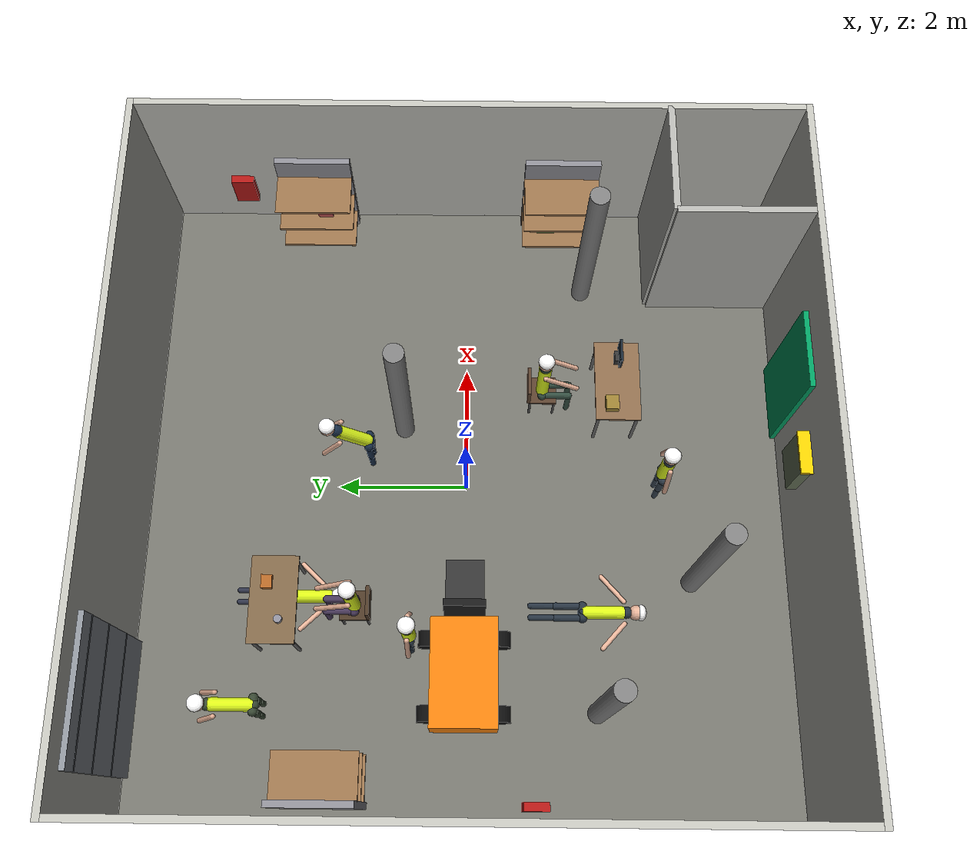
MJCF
<mujoco model="ppe_dataset_world">

    <compiler angle="radian"/>
    <option timestep="0.005"/>

    <worldbody>

        <camera
            name="dataset_camera"
            pos="0 -8 2.5"
            quat="0.5 0.5 -0.5 -0.5"
            fovy="58"/>

        <geom name="floor" type="plane" size="5 5 0.1" rgba="0.45 0.45 0.42 1" friction="1.0 0.005 0.0001"/>
        <light directional="true" diffuse=".8 .8 .8" specular=".3 .3 .3" pos="0 0 5" dir="0 0 -1"/>
        <!-- 보조 조명 -->
        <light directional="false" diffuse=".4 .4 .4" specular=".1 .1 .1" pos="3 3 3.5" dir="-0.3 -0.3 -1"/>
        <light directional="false" diffuse=".4 .4 .4" specular=".1 .1 .1" pos="-3 -3 3.5" dir="0.3 0.3 -1"/>

        <!-- 벽면 -->
        <geom name="wall_north" type="box" size="5.1 0.05 1.5" pos="0 5.05 1.5" rgba="0.75 0.75 0.72 1"/>
        <geom name="wall_south" type="box" size="5.1 0.05 1.5" pos="0 -5.05 1.5" rgba="0.75 0.75 0.72 1"/>
        <geom name="wall_east" type="box" size="0.05 5.0 1.5" pos="5.05 0 1.5" rgba="0.75 0.75 0.72 1"/>
        <geom name="wall_west" type="box" size="0.05 5.0 1.5" pos="-5.05 0 1.5" rgba="0.75 0.75 0.72 1"/>

        <!-- 기둥 -->
        <body name="column_1" pos="-1.5 -3.5 0">
            <geom name="column_1_geom" type="cylinder" size="0.15 1.5" pos="0 0 1.5" rgba="0.5 0.5 0.5 1" mass="80.0"/>
        </body>
        <body name="column_2" pos="1 1 0">
            <geom name="column_2_geom" type="cylinder" size="0.15 1.5" pos="0 0 1.5" rgba="0.5 0.5 0.5 1" mass="80.0"/>
        </body>
        <body name="column_3" pos="3.5 -1.9 0">
            <geom name="column_3_geom" type="cylinder" size="0.15 1.5" pos="0 0 1.5" rgba="0.5 0.5 0.5 1" mass="80.0"/>
        </body>
        <body name="column_4" pos="-3.5 -2 0">
            <geom name="column_4_geom" type="cylinder" size="0.15 1.5" pos="0 0 1.5" rgba="0.5 0.5 0.5 1" mass="80.0"/>
        </body>

        <!-- 서쪽 벽면 선반 -->
        <body name="wall_shelf_west" pos="-4.85 2.0 0">
            <geom name="shelf_west_back" type="box" size="0.05 0.6 0.9" pos="0 0 0.9" rgba="0.55 0.55 0.58 1" mass="8.0"/>
            <geom name="shelf_west_tier1" type="box" size="0.35 0.6 0.02" pos="0.35 0 0.4" rgba="0.6 0.45 0.3 1" mass="5.0"/>
            <geom name="shelf_west_tier2" type="box" size="0.35 0.6 0.02" pos="0.35 0 0.9" rgba="0.6 0.45 0.3 1" mass="5.0"/>
            <geom name="shelf_west_tier3" type="box" size="0.35 0.6 0.02" pos="0.35 0 1.4" rgba="0.6 0.45 0.3 1" mass="5.0"/>
            <geom name="shelf_west_item1" type="box" size="0.15 0.15 0.12" pos="0.3 -0.2 0.54" rgba="0.7 0.5 0.2 1" mass="3.0"/>
            <geom name="shelf_west_item2" type="box" size="0.12 0.12 0.1" pos="0.35 0.15 1.02" rgba="0.3 0.3 0.7 1" mass="2.0"/>
        </body>

        <!-- 동쪽 벽면 선반 1 -->
        <body name="wall_shelf_east_1" pos="4.85 -1.5 0">
            <geom name="shelf_east1_back" type="box" size="0.05 0.6 0.9" pos="0 0 0.9" rgba="0.55 0.55 0.58 1" mass="8.0"/>
            <geom name="shelf_east1_tier1" type="box" size="0.35 0.6 0.02" pos="-0.35 0 0.4" rgba="0.6 0.45 0.3 1" mass="5.0"/>
            <geom name="shelf_east1_tier2" type="box" size="0.35 0.6 0.02" pos="-0.35 0 0.9" rgba="0.6 0.45 0.3 1" mass="5.0"/>
            <geom name="shelf_east1_tier3" type="box" size="0.35 0.6 0.02" pos="-0.35 0 1.4" rgba="0.6 0.45 0.3 1" mass="5.0"/>
            <geom name="shelf_east1_item1" type="box" size="0.15 0.15 0.12" pos="-0.3 0.2 0.54" rgba="0.4 0.6 0.3 1" mass="3.0"/>
        </body>

        <!-- 동쪽 벽면 선반 2 -->
        <body name="wall_shelf_east_2" pos="4.85 2.5 0">
            <geom name="shelf_east2_back" type="box" size="0.05 0.6 0.9" pos="0 0 0.9" rgba="0.55 0.55 0.58 1" mass="8.0"/>
            <geom name="shelf_east2_tier1" type="box" size="0.35 0.6 0.02" pos="-0.35 0 0.4" rgba="0.6 0.45 0.3 1" mass="5.0"/>
            <geom name="shelf_east2_tier2" type="box" size="0.35 0.6 0.02" pos="-0.35 0 0.9" rgba="0.6 0.45 0.3 1" mass="5.0"/>
            <geom name="shelf_east2_tier3" type="box" size="0.35 0.6 0.02" pos="-0.35 0 1.4" rgba="0.6 0.45 0.3 1" mass="5.0"/>
            <geom name="shelf_east2_item1" type="box" size="0.12 0.12 0.1" pos="-0.35 -0.15 1.02" rgba="0.7 0.3 0.3 1" mass="2.0"/>
        </body>

        <!-- 벽면 전기 배전반 & 소화기함 (기본 인프라) -->
        <body name="electrical_panel" pos="0 -4.85 0">
            <geom name="panel_box" type="box" size="0.3 0.08 0.4" pos="0 0 1.5" rgba="0.4 0.45 0.35 1" mass="15.0"/>
            <geom name="panel_warning_stripe" type="box" size="0.32 0.09 0.02" pos="0 0 1.9" rgba="1 0.8 0 1" contype="0" conaffinity="0"/>
        </body>

        <body name="fire_extinguisher_1" pos="4.85 3.7 0">
            <geom name="extinguisher_cabinet_1" type="box" size="0.06 0.18 0.28" pos="0 0 1.0" rgba="0.69 0.09 0.08 1" mass="5.0"/>
        </body>
        <body name="fire_extinguisher_2" pos="-4.85 -1.0 0">
            <geom name="extinguisher_cabinet_2" type="box" size="0.06 0.18 0.28" pos="0 0 1.0" rgba="0.69 0.09 0.08 1" mass="5.0"/>
        </body>

        <!-- 북쪽 벽 하역장 셔터도어 -->
        <body name="loading_dock_door" pos="-3.5 5.0 0">
            <geom name="shutter_door" type="box" size="1.0 0.08 1.3" pos="0 0 1.3" rgba="0.55 0.57 0.6 1"/>
            <geom name="shutter_line_1" type="box" size="1.0 0.09 0.02" pos="0 0 0.8" rgba="0.35 0.37 0.4 1" contype="0" conaffinity="0"/>
            <geom name="shutter_line_2" type="box" size="1.0 0.09 0.02" pos="0 0 1.6" rgba="0.35 0.37 0.4 1" contype="0" conaffinity="0"/>
            <geom name="shutter_line_3" type="box" size="1.0 0.09 0.02" pos="0 0 2.3" rgba="0.35 0.37 0.4 1" contype="0" conaffinity="0"/>
        </body>

        <!-- 남쪽 벽 비상구 -->
        <body name="emergency_exit" pos="1.5 -5.0 0">
            <geom name="exit_door" type="box" size="0.6 0.08 1.1" pos="0 0 1.1" rgba="0.0 0.62 0.38 1"/>
            <site name="exit_sign" pos="0 -0.1 2.3" size="0.15 0.08 0.03" type="box" rgba="0 1 0 0.8"/>
        </body>

        <!-- 돌출 격벽 - 전기/설비실 (기본 인프라) -->
        <body name="utility_room_wall_1" pos="3.3 -4.0 0">
            <geom name="utility_wall_1_geom" type="box" size="0.05 1.0 1.5" pos="0 0 1.5" rgba="0.7 0.7 0.68 1"/>
        </body>
        <body name="utility_room_wall_2" pos="4.175 -3.0 0">
            <geom name="utility_wall_2_geom" type="box" size="0.875 0.05 1.5" pos="0 0 1.5" rgba="0.7 0.7 0.68 1"/>
        </body>
        <!-- 격벽 내부 변압기/설비 박스 -->
        <body name="utility_equipment" pos="4.2 -4.2 0">
            <geom name="transformer_box" type="box" size="0.4 0.3 0.5" pos="0 0 0.5" rgba="0.3 0.5 0.3 1" mass="150.0"/>
            <!-- 고전압 경고 표시 -->
            <geom name="transformer_warning" type="box" size="0.4 0.31 0.05" pos="0 0 0.85" rgba="1 0.8 0 1" contype="0" conaffinity="0"/>
        </body>

        <!-- Standing workers (서 있는 작업자)                     -->

        <!-- 서 있는 작업자 0 - 중앙 좌측 -->
        <body name="standing_worker_0" pos="-2.5 0.8 0">
            <geom name="sw0_head" type="sphere" size="0.115" pos="0 0 1.62" rgba="0.90 0.70 0.60 1" mass="5.0"/>
            <geom name="sw0_helmet" type="ellipsoid" size="0.125 0.125 0.075" pos="0 0 1.70" rgba="1.0 1.0 1.0 1" mass="0.5" contype="0" conaffinity="0"/>
            <geom name="sw0_torso" type="capsule" fromto="0 0 0.82 0 0 1.48" size="0.092" rgba="0.15 0.20 0.25 1" mass="30.0"/>
            <geom name="sw0_vest" type="capsule" fromto="0 0 0.84 0 0 1.40" size="0.100" rgba="0.85 0.95 0.10 0.90" mass="0.1" contype="0" conaffinity="0"/>
            <geom name="sw0_pelvis" type="capsule" fromto="-0.09 0 0.80 0.09 0 0.80" size="0.075" rgba="0.15 0.20 0.25 1" mass="8.0"/>
            <geom name="sw0_luleg" type="capsule" fromto="-0.09 0 0.80 -0.09 0 0.38" size="0.055" rgba="0.15 0.20 0.25 1" mass="8.0"/>
            <geom name="sw0_llleg" type="capsule" fromto="-0.09 0 0.38 -0.09 0 0.00" size="0.045" rgba="0.15 0.20 0.25 1" mass="4.0"/>
            <geom name="sw0_ruleg" type="capsule" fromto="0.09 0 0.80 0.09 0 0.38" size="0.055" rgba="0.15 0.20 0.25 1" mass="8.0"/>
            <geom name="sw0_rlleg" type="capsule" fromto="0.09 0 0.38 0.09 0 0.00" size="0.045" rgba="0.15 0.20 0.25 1" mass="4.0"/>
            <geom name="sw0_larm" type="capsule" fromto="-0.17 0 1.44 -0.30 0 0.90" size="0.037" rgba="0.90 0.70 0.60 1" mass="4.0"/>
            <geom name="sw0_rarm" type="capsule" fromto="0.17 0 1.44 0.30 0 0.90" size="0.037" rgba="0.90 0.70 0.60 1" mass="4.0"/>
        </body>

        <!-- 서 있는 작업자 1 - 남쪽 -->
        <body name="standing_worker_1" pos="0 -3.0 0">
            <geom name="sw1_head" type="sphere" size="0.115" pos="0 0 1.62" rgba="0.90 0.70 0.60 1" mass="5.0"/>
            <geom name="sw1_helmet" type="ellipsoid" size="0.125 0.125 0.075" pos="0 0 1.70" rgba="1.0 1.0 1.0 1" mass="0.5" contype="0" conaffinity="0"/>
            <geom name="sw1_torso" type="capsule" fromto="0 0 0.82 0 0 1.48" size="0.092" rgba="0.20 0.25 0.30 1" mass="30.0"/>
            <geom name="sw1_vest" type="capsule" fromto="0 0 0.84 0 0 1.40" size="0.100" rgba="0.85 0.95 0.10 0.90" mass="0.1" contype="0" conaffinity="0"/>
            <geom name="sw1_pelvis" type="capsule" fromto="-0.09 0 0.80 0.09 0 0.80" size="0.075" rgba="0.20 0.25 0.30 1" mass="8.0"/>
            <geom name="sw1_luleg" type="capsule" fromto="-0.09 0 0.80 -0.09 0 0.38" size="0.055" rgba="0.20 0.25 0.30 1" mass="8.0"/>
            <geom name="sw1_llleg" type="capsule" fromto="-0.09 0 0.38 -0.09 0 0.00" size="0.045" rgba="0.20 0.25 0.30 1" mass="4.0"/>
            <geom name="sw1_ruleg" type="capsule" fromto="0.09 0 0.80 0.09 0 0.38" size="0.055" rgba="0.20 0.25 0.30 1" mass="8.0"/>
            <geom name="sw1_rlleg" type="capsule" fromto="0.09 0 0.38 0.09 0 0.00" size="0.045" rgba="0.20 0.25 0.30 1" mass="4.0"/>
            <geom name="sw1_larm" type="capsule" fromto="-0.17 0 1.44 -0.30 0 0.90" size="0.037" rgba="0.90 0.70 0.60 1" mass="4.0"/>
            <geom name="sw1_rarm" type="capsule" fromto="0.17 0 1.44 0.30 0 0.90" size="0.037" rgba="0.90 0.70 0.60 1" mass="4.0"/>
        </body>

        <!-- Bending workers (허리를 굽힌 작업자)                   -->

        <!-- 허리를 굽힌 작업자 0 - 중앙 북동 (45도) -->
        <body name="bending_worker_0" pos="0.5 1.5 0">
            <geom name="bw0_luleg" type="capsule" fromto="-0.09 0 0.80 -0.09 0 0.38" size="0.055" rgba="0.10 0.18 0.28 1" mass="8.0"/>
            <geom name="bw0_llleg" type="capsule" fromto="-0.09 0 0.38 -0.09 0 0.00" size="0.045" rgba="0.10 0.18 0.28 1" mass="4.0"/>
            <geom name="bw0_ruleg" type="capsule" fromto="0.09 0 0.80 0.09 0 0.38" size="0.055" rgba="0.10 0.18 0.28 1" mass="8.0"/>
            <geom name="bw0_rlleg" type="capsule" fromto="0.09 0 0.38 0.09 0 0.00" size="0.045" rgba="0.10 0.18 0.28 1" mass="4.0"/>
            <geom name="bw0_pelvis" type="capsule" fromto="-0.09 0 0.80 0.09 0 0.80" size="0.075" rgba="0.10 0.18 0.28 1" mass="8.0"/>
            <geom name="bw0_torso" type="capsule" fromto="0 0 0.80 0 0.467 1.267" size="0.092" rgba="0.10 0.18 0.28 1" mass="30.0"/>
            <geom name="bw0_head" type="sphere" size="0.115" pos="0 0.58 1.36" rgba="0.90 0.70 0.60 1" mass="5.0"/>
            <geom name="bw0_helmet" type="ellipsoid" size="0.125 0.125 0.075" pos="0 0.58 1.44" rgba="1.0 1.0 1.0 1" mass="0.5" contype="0" conaffinity="0"/>
            <geom name="bw0_vest" type="capsule" fromto="0 0.03 0.84 0 0.43 1.22" size="0.100" rgba="0.85 0.95 0.10 0.90" mass="0.1" contype="0" conaffinity="0"/>
            <geom name="bw0_larm" type="capsule" fromto="-0.17 0.40 1.18 -0.20 0.68 0.80" size="0.037" rgba="0.90 0.70 0.60 1" mass="4.0"/>
            <geom name="bw0_rarm" type="capsule" fromto="0.17 0.40 1.18 0.20 0.68 0.80" size="0.037" rgba="0.90 0.70 0.60 1" mass="4.0"/>
        </body>

        <!-- 허리를 굽힌 작업자 1 - 북서쪽 (90도) -->
        <body name="bending_worker_1" pos="-3.5 3.0 0">
            <geom name="bw1_luleg" type="capsule" fromto="-0.09 0 0.80 -0.09 0 0.38" size="0.055" rgba="0.22 0.28 0.20 1" mass="8.0"/>
            <geom name="bw1_llleg" type="capsule" fromto="-0.09 0 0.38 -0.09 0 0.00" size="0.045" rgba="0.22 0.28 0.20 1" mass="4.0"/>
            <geom name="bw1_ruleg" type="capsule" fromto="0.09 0 0.80 0.09 0 0.38" size="0.055" rgba="0.22 0.28 0.20 1" mass="8.0"/>
            <geom name="bw1_rlleg" type="capsule" fromto="0.09 0 0.38 0.09 0 0.00" size="0.045" rgba="0.22 0.28 0.20 1" mass="4.0"/>
            <geom name="bw1_pelvis" type="capsule" fromto="-0.09 0 0.80 0.09 0 0.80" size="0.075" rgba="0.22 0.28 0.20 1" mass="8.0"/>
            <geom name="bw1_torso" type="capsule" fromto="0 0 0.80 0 0.66 0.80" size="0.092" rgba="0.22 0.28 0.20 1" mass="30.0"/>
            <geom name="bw1_head" type="sphere" size="0.115" pos="0 0.79 0.89" rgba="0.85 0.65 0.55 1" mass="5.0"/>
            <geom name="bw1_helmet" type="ellipsoid" size="0.125 0.125 0.075" pos="0 0.79 0.97" rgba="1.0 1.0 1.0 1" mass="0.5" contype="0" conaffinity="0"/>
            <geom name="bw1_vest" type="capsule" fromto="0 0.03 0.80 0 0.60 0.80" size="0.100" rgba="0.85 0.95 0.10 0.90" mass="0.1" contype="0" conaffinity="0"/>
            <geom name="bw1_larm" type="capsule" fromto="-0.17 0.56 0.80 -0.20 0.82 0.48" size="0.037" rgba="0.85 0.65 0.55 1" mass="4.0"/>
            <geom name="bw1_rarm" type="capsule" fromto="0.17 0.56 0.80 0.20 0.82 0.48" size="0.037" rgba="0.85 0.65 0.55 1" mass="4.0"/>
        </body>

        <!-- 작업대 + 의자 + 앉아있는 작업자                         -->

        <!-- 작업대 0 - 남동쪽 -->
        <body name="workbench_0" pos="1.5 -2.35 0">
            <geom name="wb0_top" type="box" size="0.65 0.35 0.02" pos="0 0 0.90" rgba="0.55 0.42 0.30 1" mass="20.0"/>
            <geom name="wb0_leg_fl" type="cylinder" size="0.025 0.45" pos="-0.60 -0.30 0.45" rgba="0.40 0.40 0.40 1" mass="3.0"/>
            <geom name="wb0_leg_fr" type="cylinder" size="0.025 0.45" pos="0.60 -0.30 0.45" rgba="0.40 0.40 0.40 1" mass="3.0"/>
            <geom name="wb0_leg_bl" type="cylinder" size="0.025 0.45" pos="-0.60 0.30 0.45" rgba="0.40 0.40 0.40 1" mass="3.0"/>
            <geom name="wb0_leg_br" type="cylinder" size="0.025 0.45" pos="0.60 0.30 0.45" rgba="0.40 0.40 0.40 1" mass="3.0"/>
            <geom name="wb0_tool_box" type="box" size="0.12 0.10 0.06" pos="-0.40 0.10 0.98" rgba="0.60 0.50 0.20 1" mass="2.0"/>
            <geom name="wb0_monitor_base" type="box" size="0.08 0.05 0.10" pos="0.35 0 0.98" rgba="0.20 0.20 0.20 1" mass="1.5"/>
            <geom name="wb0_monitor_screen" type="box" size="0.18 0.02 0.14" pos="0.35 -0.03 1.16" rgba="0.10 0.15 0.20 1" mass="3.0"/>
        </body>

        <!-- 의자 0 -->
        <body name="chair_0" pos="1.5 -1.2 0">
            <geom name="ch0_seat" type="box" size="0.22 0.22 0.025" pos="0 0 0.47" rgba="0.35 0.25 0.18 1" mass="4.0"/>
            <geom name="ch0_back" type="box" size="0.22 0.025 0.20" pos="0 0.22 0.68" rgba="0.35 0.25 0.18 1" mass="3.0"/>
            <geom name="ch0_leg_fl" type="cylinder" size="0.018 0.235" pos="-0.19 -0.19 0.235" rgba="0.30 0.30 0.30 1" mass="1.0"/>
            <geom name="ch0_leg_fr" type="cylinder" size="0.018 0.235" pos="0.19 -0.19 0.235" rgba="0.30 0.30 0.30 1" mass="1.0"/>
            <geom name="ch0_leg_bl" type="cylinder" size="0.018 0.235" pos="-0.19 0.19 0.235" rgba="0.30 0.30 0.30 1" mass="1.0"/>
            <geom name="ch0_leg_br" type="cylinder" size="0.018 0.235" pos="0.19 0.19 0.235" rgba="0.30 0.30 0.30 1" mass="1.0"/>
        </body>

        <!-- 앉아있는 작업자 0 -->
        <body name="sitting_worker_0" pos="1.5 -1.2 0">
            <geom name="stw0_head" type="sphere" size="0.115" pos="0 0 1.53" rgba="0.90 0.70 0.60 1" mass="5.0"/>
            <geom name="stw0_helmet" type="ellipsoid" size="0.125 0.125 0.075" pos="0 0 1.61" rgba="1.0 1.0 1.0 1" mass="0.5" contype="0" conaffinity="0"/>
            <geom name="stw0_torso" type="capsule" fromto="0 0 0.495 0 0 1.39" size="0.092" rgba="0.20 0.30 0.25 1" mass="30.0"/>
            <geom name="stw0_vest" type="capsule" fromto="0 0 0.52 0 0 1.34" size="0.100" rgba="0.85 0.95 0.10 0.90" mass="0.1" contype="0" conaffinity="0"/>
            <geom name="stw0_pelvis" type="capsule" fromto="-0.09 0 0.495 0.09 0 0.495" size="0.075" rgba="0.20 0.30 0.25 1" mass="8.0"/>
            <geom name="stw0_lthigh" type="capsule" fromto="-0.09 0 0.495 -0.09 -0.42 0.495" size="0.055" rgba="0.20 0.30 0.25 1" mass="8.0"/>
            <geom name="stw0_rthigh" type="capsule" fromto="0.09 0 0.495 0.09 -0.42 0.495" size="0.055" rgba="0.20 0.30 0.25 1" mass="8.0"/>
            <geom name="stw0_llleg" type="capsule" fromto="-0.09 -0.42 0.495 -0.09 -0.42 0.00" size="0.045" rgba="0.20 0.30 0.25 1" mass="4.0"/>
            <geom name="stw0_rlleg" type="capsule" fromto="0.09 -0.42 0.495 0.09 -0.42 0.00" size="0.045" rgba="0.20 0.30 0.25 1" mass="4.0"/>
            <geom name="stw0_larm" type="capsule" fromto="-0.17 0 1.35 -0.17 -0.50 1.00" size="0.037" rgba="0.90 0.70 0.60 1" mass="4.0"/>
            <geom name="stw0_rarm" type="capsule" fromto="0.17 0 1.35 0.17 -0.50 1.00" size="0.037" rgba="0.90 0.70 0.60 1" mass="4.0"/>
        </body>

        <!-- 작업대 1 - 북서쪽 -->
        <body name="workbench_1" pos="-2.0 2.8 0">
            <geom name="wb1_top" type="box" size="0.65 0.35 0.02" pos="0 0 0.90" rgba="0.50 0.40 0.28 1" mass="20.0"/>
            <geom name="wb1_leg_fl" type="cylinder" size="0.025 0.45" pos="-0.60 -0.30 0.45" rgba="0.40 0.40 0.40 1" mass="3.0"/>
            <geom name="wb1_leg_fr" type="cylinder" size="0.025 0.45" pos="0.60 -0.30 0.45" rgba="0.40 0.40 0.40 1" mass="3.0"/>
            <geom name="wb1_leg_bl" type="cylinder" size="0.025 0.45" pos="-0.60 0.30 0.45" rgba="0.40 0.40 0.40 1" mass="3.0"/>
            <geom name="wb1_leg_br" type="cylinder" size="0.025 0.45" pos="0.60 0.30 0.45" rgba="0.40 0.40 0.40 1" mass="3.0"/>
            <geom name="wb1_part_a" type="cylinder" size="0.06 0.04" pos="-0.30 -0.10 0.97" rgba="0.55 0.55 0.60 1" mass="1.0"/>
            <geom name="wb1_part_b" type="box" size="0.10 0.08 0.04" pos="0.25 0.10 0.96" rgba="0.70 0.40 0.15 1" mass="1.5"/>
        </body>

        <!-- 의자 1 -->
        <body name="chair_1" pos="-2.0 1.65 0">
            <geom name="ch1_seat" type="box" size="0.22 0.22 0.025" pos="0 0 0.47" rgba="0.30 0.22 0.15 1" mass="4.0"/>
            <geom name="ch1_back" type="box" size="0.22 0.025 0.20" pos="0 -0.22 0.68" rgba="0.30 0.22 0.15 1" mass="3.0"/>
            <geom name="ch1_leg_fl" type="cylinder" size="0.018 0.235" pos="-0.19 -0.19 0.235" rgba="0.30 0.30 0.30 1" mass="1.0"/>
            <geom name="ch1_leg_fr" type="cylinder" size="0.018 0.235" pos="0.19 -0.19 0.235" rgba="0.30 0.30 0.30 1" mass="1.0"/>
            <geom name="ch1_leg_bl" type="cylinder" size="0.018 0.235" pos="-0.19 0.19 0.235" rgba="0.30 0.30 0.30 1" mass="1.0"/>
            <geom name="ch1_leg_br" type="cylinder" size="0.018 0.235" pos="0.19 0.19 0.235" rgba="0.30 0.30 0.30 1" mass="1.0"/>
        </body>

        <!-- 앉아있는 작업자 1 -->
        <body name="sitting_worker_1" pos="-2.0 1.65 0">
            <geom name="stw1_head" type="sphere" size="0.115" pos="0 0 1.53" rgba="0.85 0.65 0.55 1" mass="5.0"/>
            <geom name="stw1_helmet" type="ellipsoid" size="0.125 0.125 0.075" pos="0 0 1.61" rgba="1.0 1.0 1.0 1" mass="0.5" contype="0" conaffinity="0"/>
            <geom name="stw1_torso" type="capsule" fromto="0 0 0.495 0 0 1.39" size="0.092" rgba="0.28 0.22 0.35 1" mass="30.0"/>
            <geom name="stw1_vest" type="capsule" fromto="0 0 0.52 0 0 1.34" size="0.100" rgba="0.85 0.95 0.10 0.90" mass="0.1" contype="0" conaffinity="0"/>
            <geom name="stw1_pelvis" type="capsule" fromto="-0.09 0 0.495 0.09 0 0.495" size="0.075" rgba="0.28 0.22 0.35 1" mass="8.0"/>
            <geom name="stw1_lthigh" type="capsule" fromto="-0.09 0 0.495 -0.09 0.42 0.495" size="0.055" rgba="0.28 0.22 0.35 1" mass="8.0"/>
            <geom name="stw1_rthigh" type="capsule" fromto="0.09 0 0.495 0.09 0.42 0.495" size="0.055" rgba="0.28 0.22 0.35 1" mass="8.0"/>
            <geom name="stw1_llleg" type="capsule" fromto="-0.09 0.42 0.495 -0.09 0.42 0.00" size="0.045" rgba="0.28 0.22 0.35 1" mass="4.0"/>
            <geom name="stw1_rlleg" type="capsule" fromto="0.09 0.42 0.495 0.09 0.42 0.00" size="0.045" rgba="0.28 0.22 0.35 1" mass="4.0"/>
            <geom name="stw1_larm" type="capsule" fromto="-0.17 0 1.35 -0.15 0.50 1.00" size="0.037" rgba="0.85 0.65 0.55 1" mass="4.0"/>
            <geom name="stw1_rarm" type="capsule" fromto="0.17 0 1.35 0.15 0.50 1.00" size="0.037" rgba="0.85 0.65 0.55 1" mass="4.0"/>
        </body>

        <!-- fallen workers                              -->

        <!-- face-up 작업자 0 - 남서쪽 -->
        <body name="fallen_faceup_0" pos="-2.0 -1.0 0.115" quat="0.707 0.707 0 0">
            <geom name="ffu0_head" type="sphere" size="0.115" pos="0 0 1.62" rgba="0.90 0.70 0.60 1" mass="5.0"/>
            <geom name="ffu0_helmet" type="ellipsoid" size="0.125 0.125 0.075" pos="0 0 1.70" rgba="1.0 1.0 1.0 1" mass="0.5" contype="0" conaffinity="0"/>
            <geom name="ffu0_torso" type="capsule" fromto="0 0 0.82 0 0 1.48" size="0.092" rgba="0.15 0.20 0.25 1" mass="30.0"/>
            <geom name="ffu0_vest" type="capsule" fromto="0 0 0.84 0 0 1.40" size="0.100" rgba="0.85 0.95 0.10 0.90" mass="0.1" contype="0" conaffinity="0"/>
            <geom name="ffu0_pelvis" type="capsule" fromto="-0.09 0 0.80 0.09 0 0.80" size="0.075" rgba="0.15 0.20 0.25 1" mass="8.0"/>
            <geom name="ffu0_luleg" type="capsule" fromto="-0.09 0 0.80 -0.09 0 0.38" size="0.055" rgba="0.15 0.20 0.25 1" mass="8.0"/>
            <geom name="ffu0_llleg" type="capsule" fromto="-0.09 0 0.38 -0.09 0 0.00" size="0.045" rgba="0.15 0.20 0.25 1" mass="4.0"/>
            <geom name="ffu0_ruleg" type="capsule" fromto="0.09 0 0.80 0.09 0 0.38" size="0.055" rgba="0.15 0.20 0.25 1" mass="8.0"/>
            <geom name="ffu0_rlleg" type="capsule" fromto="0.09 0 0.38 0.09 0 0.00" size="0.045" rgba="0.15 0.20 0.25 1" mass="4.0"/>
            <geom name="ffu0_larm" type="capsule" fromto="-0.17 0 1.44 -0.55 0 1.10" size="0.037" rgba="0.90 0.70 0.60 1" mass="4.0"/>
            <geom name="ffu0_rarm" type="capsule" fromto="0.17 0 1.44 0.55 0 1.10" size="0.037" rgba="0.90 0.70 0.60 1" mass="4.0"/>
        </body>

        <!-- face-down 작업자 0 -->
        <body name="fallen_facedown_0" pos="-1.8 2.0 0.115">
            <geom name="ffd0_head" type="sphere" size="0.115" pos="0 -0.08 0" rgba="0.90 0.70 0.60 1" mass="5.0"/>
            <geom name="ffd0_helmet" type="ellipsoid" size="0.125 0.125 0.075" pos="0 -0.08 0.08" rgba="1.0 1.0 1.0 1" mass="0.5" contype="0" conaffinity="0"/>
            <geom name="ffd0_torso" type="capsule" fromto="0 0.05 0 0 0.65 0" size="0.092" rgba="0.18 0.20 0.28 1" mass="30.0"/>
            <geom name="ffd0_vest" type="capsule" fromto="0 0.07 0.03 0 0.62 0.03" size="0.100" rgba="0.85 0.95 0.10 0.90" mass="0.1" contype="0" conaffinity="0"/>
            <geom name="ffd0_pelvis" type="capsule" fromto="-0.09 0.65 0 0.09 0.65 0" size="0.075" rgba="0.18 0.20 0.28 1" mass="8.0"/>
            <geom name="ffd0_luleg" type="capsule" fromto="-0.09 0.65 0 -0.09 1.05 0" size="0.055" rgba="0.18 0.20 0.28 1" mass="8.0"/>
            <geom name="ffd0_llleg" type="capsule" fromto="-0.09 1.05 0 -0.09 1.45 0" size="0.045" rgba="0.18 0.20 0.28 1" mass="4.0"/>
            <geom name="ffd0_ruleg" type="capsule" fromto="0.09 0.65 0 0.09 1.05 0" size="0.055" rgba="0.18 0.20 0.28 1" mass="8.0"/>
            <geom name="ffd0_rlleg" type="capsule" fromto="0.09 1.05 0 0.09 1.45 0" size="0.045" rgba="0.18 0.20 0.28 1" mass="4.0"/>
            <geom name="ffd0_larm" type="capsule" fromto="-0.17 0.15 0 -0.50 0.50 0" size="0.037" rgba="0.90 0.70 0.60 1" mass="4.0"/>
            <geom name="ffd0_rarm" type="capsule" fromto="0.17 0.15 0 0.50 0.50 0" size="0.037" rgba="0.90 0.70 0.60 1" mass="4.0"/>
        </body>

        <!-- 지게차 모델 (간단한 형태) - 움직이는 물체 감지 시나리오용 -->
        <body name="forklift" pos="-3 0 0">
            <freejoint name="forklift_freejoint"/>
            <inertial pos="0 0 0.5" mass="260" diaginertia="100 100 100"/>

            <geom name="fl_body" type="box" size="0.8 0.5 0.4" pos="0 0 0.4" rgba="0.95 0.5 0.05 1.0"/>
            <geom name="fl_fork" type="box" size="0.5 0.3 0.02" pos="1.3 0 0.1" rgba="0.2 0.2 0.2 1"/>
            <geom name="fl_mast" type="box" size="0.05 0.3 0.8" pos="0.85 0 0.8" rgba="0.1 0.1 0.1 1"/>
            <geom name="fl_wheel_fl" type="cylinder" size="0.18 0.12" pos="0.55 0.52 0.18" quat="0.7071 0 0.7071 0" rgba="0.05 0.05 0.05 1"/>
            <geom name="fl_wheel_fr" type="cylinder" size="0.18 0.12" pos="0.55 -0.52 0.18" quat="0.7071 0 0.7071 0" rgba="0.05 0.05 0.05 1"/>
            <geom name="fl_wheel_rl" type="cylinder" size="0.18 0.12" pos="-0.55 0.52 0.18" quat="0.7071 0 0.7071 0" rgba="0.05 0.05 0.05 1"/>
            <geom name="fl_wheel_rr" type="cylinder" size="0.18 0.12" pos="-0.55 -0.52 0.18" quat="0.7071 0 0.7071 0" rgba="0.05 0.05 0.05 1"/>
        </body>
    </worldbody>
</mujoco>
